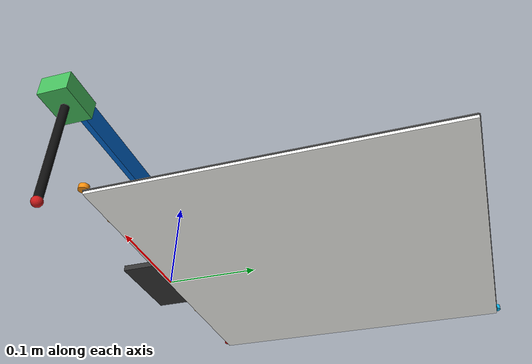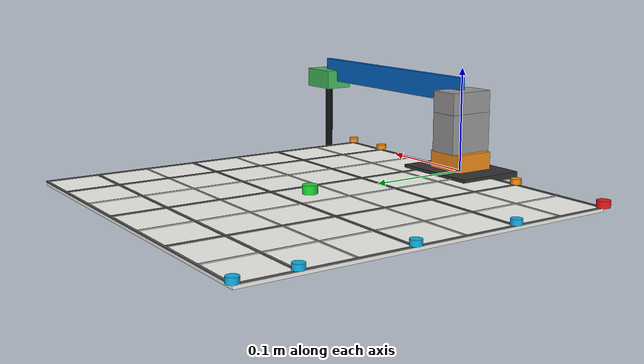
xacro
<?xml version="1.0"?>
<robot name="prarob_manipulator" xmlns:xacro="http://ros.org/wiki/xacro">
  <xacro:include filename="$(find robot_controllv2)/urdf/prarob_manipulator.xacro" />
  <xacro:include filename="$(find robot_controllv2)/urdf/prarob_manipulator.ros2_control.xacro" />

  <link name="world"/>

  <xacro:prarob_manipulator parent="world">
    <origin xyz="0 0 0" rpy="0 0 0" />
  </xacro:prarob_manipulator>

  <xacro:prarob_manipulator_ros2_control name="prarob_manipulator_ros2_control" />

  <xacro:include filename="$(find robot_controllv2)/urdf/drawing_board.xacro"/>

  <xacro:drawing_board parent="world"/>

</robot>

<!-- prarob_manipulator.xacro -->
<robot xmlns:xacro="http://ros.org/wiki/xacro">

<xacro:macro name="prarob_manipulator" params="parent *origin">
  <joint name="origin_to_link1" type="fixed">
    <xacro:insert_block name="origin" />
    <parent link="${parent}" />
    <child link="link1" />
    <origin xyz="0.0 0.0 0.0" rpy="0 0 0"/>
    <axis xyz="0 0 1" />
  </joint>

  <!-- link1: base plate + riser + servo body (fixed, before joint1 base yaw) -->
  <!-- origin = centre of base plate (z=0 is the plate mid-plane) -->
  <link name="link1">
    <inertial>
      <origin xyz="0 0 0.027" rpy="0 0 0"/>
      <mass value="0.18"/>
      <inertia ixx="1.30e-04" iyy="1.30e-04" izz="8.10e-05" ixy="0" iyz="0" ixz="0"/>
    </inertial>
    <!-- base plate -->
    <visual>
      <origin xyz="0 0 0" rpy="0 0 0"/>
      <geometry><box size="0.086 0.068 0.006"/></geometry>
      <material name="base_dark_grey"><color rgba="0.20 0.20 0.20 1.0"/></material>
    </visual>
    <collision>
      <origin xyz="0 0 0" rpy="0 0 0"/>
      <geometry><box size="0.086 0.068 0.006"/></geometry>
    </collision>
    <!-- riser -->
    <visual>
      <origin xyz="0 0 0.0115" rpy="0 0 0"/>
      <geometry><box size="0.040 0.040 0.017"/></geometry>
      <material name="base_orange"><color rgba="0.95 0.55 0.10 1.0"/></material>
    </visual>
    <collision>
      <origin xyz="0 0 0.0115" rpy="0 0 0"/>
      <geometry><box size="0.040 0.040 0.017"/></geometry>
    </collision>
    <!-- servo1 body (fixed part of yaw motor) -->
    <visual>
      <origin xyz="0 0 0.039" rpy="0 0 0"/>
      <geometry><box size="0.0285 0.046 0.0379"/></geometry>
      <material name="base_light_grey"><color rgba="0.60 0.60 0.60 1.0"/></material>
    </visual>
    <collision>
      <origin xyz="0 0 0.039" rpy="0 0 0"/>
      <geometry><box size="0.0285 0.046 0.0379"/></geometry>
    </collision>
  </link>

  <!-- joint1: base yaw (bottom), rotates around Z -->
  <joint name="joint1" type="revolute">
    <parent link="link1"/>
    <child link="link2"/>
    <origin xyz="0 0 0.0579" rpy="0 0 0"/>
    <axis xyz="0 0 1"/>
    <limit lower="-1.5707963267948966" upper="1.5707963267948966" effort="1.5" velocity="5.236"/>
    <dynamics damping="0.01" friction="0.05"/>
  </joint>

  <!-- link2: shoulder servo top (rotates with joint1) -->
  <link name="link2">
    <inertial>
      <origin xyz="0 0 0.0105" rpy="0 0 0"/>
      <mass value="0.05"/>
      <inertia ixx="1.0e-05" iyy="1.0e-05" izz="1.0e-05" ixy="0" iyz="0" ixz="0"/>
    </inertial>
    <visual>
      <origin xyz="0 0 0.0105" rpy="0 0 0"/>
      <geometry><box size="0.0285 0.046 0.021"/></geometry>
      <material name="shoulder_light_grey"><color rgba="0.60 0.60 0.60 1.0"/></material>
    </visual>
    <collision>
      <origin xyz="0 0 0.0105" rpy="0 0 0"/>
      <geometry><box size="0.0285 0.046 0.021"/></geometry>
    </collision>
  </link>

  <!-- joint2: arm pitch (second), rotates around -Y so +90° lifts arm to +Z -->
  <joint name="joint2" type="revolute">
    <parent link="link2"/>
    <child link="link3"/>
    <origin xyz="0 0 0.0209" rpy="0 0 0"/>
    <axis xyz="0 -1 0"/>
    <limit lower="-1.5707963267948966" upper="1.5707963267948966" effort="1.5" velocity="5.236"/>
    <dynamics damping="0.01" friction="0.05"/>
  </joint>

  <!-- link3: arm (224 mm), extends along +X in default position -->
  <link name="link3">
    <inertial>
      <origin xyz="0.112 0 0" rpy="0 0 0"/>
      <mass value="0.0776"/>
      <inertia ixx="5.04e-06" iyy="4.66e-04" izz="4.71e-04" ixy="0" iyz="0" ixz="0"/>
    </inertial>
    <visual>
      <origin xyz="0.112 0 0" rpy="0 0 0"/>
      <geometry><box size="0.224 0.006 0.024"/></geometry>
      <material name="arm_blue"><color rgba="0.00 0.40 0.80 1.0"/></material>
    </visual>
    <collision>
      <origin xyz="0.112 0 0" rpy="0 0 0"/>
      <geometry><box size="0.224 0.006 0.024"/></geometry>
    </collision>
  </link>

  <!-- joint3: wrist, rotates around Y -->
  <joint name="joint3" type="revolute">
    <parent link="link3"/>
    <child link="link_tool"/>
    <origin xyz="0.224 0 0" rpy="0 3.14159265358979 0"/>
    <axis xyz="0 1 0"/>
    <limit lower="-1.5707963267948966" upper="1.5707963267948966" effort="1.5" velocity="3.142"/>
    <dynamics damping="0.01" friction="0.05"/>
  </joint>

  <!-- link_tool: wrist bracket -->
  <link name="link_tool">
    <inertial>
      <origin xyz="0 0 0.01" rpy="0 0 0"/>
      <mass value="0.0335"/>
      <inertia ixx="3.25e-06" iyy="8.34e-06" izz="9.92e-06" ixy="0" iyz="0" ixz="0"/>
    </inertial>
    <visual>
      <origin xyz="0 0 0.01" rpy="0 0 0"/>
      <geometry><box size="0.040 0.030 0.020"/></geometry>
      <material name="wrist_green"><color rgba="0.27 0.74 0.36 1.0"/></material>
    </visual>
    <collision>
      <origin xyz="0 0 0.01" rpy="0 0 0"/>
      <geometry><box size="0.040 0.030 0.020"/></geometry>
    </collision>
  </link>

  <!-- pen/marker attached to wrist -->
  <joint name="joint_marker" type="fixed">
    <parent link="link_tool"/>
    <child link="marker_link"/>
    <origin xyz="0 0 0.020" rpy="0 0 0"/>
  </joint>

  <link name="marker_link">
    <inertial>
      <origin xyz="0 0 0.0525" rpy="0 0 0"/>
      <mass value="0.005"/>
      <inertia ixx="1e-06" iyy="1e-06" izz="1e-07" ixy="0" iyz="0" ixz="0"/>
    </inertial>
    <visual>
      <origin xyz="0 0 0.0525" rpy="0 0 0"/>
      <geometry><cylinder radius="0.004" length="0.105"/></geometry>
      <material name="marker_black"><color rgba="0.05 0.05 0.05 1.0"/></material>
    </visual>
    <collision>
      <origin xyz="0 0 0.0525" rpy="0 0 0"/>
      <geometry><cylinder radius="0.004" length="0.105"/></geometry>
    </collision>
  </link>

  <joint name="joint_tool" type="fixed">
    <parent link="marker_link"/>
    <child link="end_effector"/>
    <origin xyz="0 0 0.105" rpy="0 0 0"/>
  </joint>

  <link name="end_effector">
    <inertial>
      <origin xyz="0 0 0" rpy="0 0 0"/>
      <mass value="0.001"/>
      <inertia ixx="0" iyy="0" izz="0" ixy="0" iyz="0" ixz="0"/>
    </inertial>
    <visual>
      <origin xyz="0 0 0" rpy="0 0 0"/>
      <geometry><sphere radius="0.005"/></geometry>
      <material name="ee_red"><color rgba="0.80 0.10 0.10 1.0"/></material>
    </visual>
  </link>

</xacro:macro>
</robot>

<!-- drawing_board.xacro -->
<robot xmlns:xacro="http://ros.org/wiki/xacro">

<xacro:macro name="drawing_board" params="parent">

  <joint name="world_to_drawing_board" type="fixed">
    <parent link="${parent}"/>
    <child link="drawing_board"/>
    <origin xyz="0 0 0" rpy="0 0 0"/>
  </joint>

  <link name="drawing_board">

    <!-- ── board surface (350×350 mm, 3 mm thick) ──────────────────── -->
    <visual>
      <origin xyz="0 0.175 -0.0015" rpy="0 0 0"/>
      <geometry><box size="0.350 0.350 0.003"/></geometry>
      <material name="board_white"><color rgba="0.97 0.97 0.95 1.0"/></material>
    </visual>
    <collision>
      <origin xyz="0 0.175 -0.0015" rpy="0 0 0"/>
      <geometry><box size="0.350 0.350 0.003"/></geometry>
    </collision>

    <!-- ── minor grid lines — 50 mm, light grey ─────────────────────── -->

    <!-- parallel to Y  (board x = 50, 150, 250 mm → world x = -0.125, -0.025, 0.075) -->
    <visual><origin xyz="-0.125 0.175 0.0005" rpy="0 0 0"/><geometry><box size="0.001 0.350 0.001"/></geometry><material name="grid_minor"><color rgba="0.75 0.75 0.75 1.0"/></material></visual>
    <visual><origin xyz="-0.025 0.175 0.0005" rpy="0 0 0"/><geometry><box size="0.001 0.350 0.001"/></geometry><material name="grid_minor"><color rgba="0.75 0.75 0.75 1.0"/></material></visual>
    <visual><origin xyz=" 0.075 0.175 0.0005" rpy="0 0 0"/><geometry><box size="0.001 0.350 0.001"/></geometry><material name="grid_minor"><color rgba="0.75 0.75 0.75 1.0"/></material></visual>

    <!-- parallel to X  (board y = 50, 150, 250 mm → world y = 0.050, 0.150, 0.250) -->
    <visual><origin xyz="0 0.050 0.0005" rpy="0 0 0"/><geometry><box size="0.350 0.001 0.001"/></geometry><material name="grid_minor"><color rgba="0.75 0.75 0.75 1.0"/></material></visual>
    <visual><origin xyz="0 0.150 0.0005" rpy="0 0 0"/><geometry><box size="0.350 0.001 0.001"/></geometry><material name="grid_minor"><color rgba="0.75 0.75 0.75 1.0"/></material></visual>
    <visual><origin xyz="0 0.250 0.0005" rpy="0 0 0"/><geometry><box size="0.350 0.001 0.001"/></geometry><material name="grid_minor"><color rgba="0.75 0.75 0.75 1.0"/></material></visual>

    <!-- ── major grid lines — 100 mm, dark grey ─────────────────────── -->

    <!-- parallel to Y  (board x = 0, 100, 200, 300, 350 mm → world x = -0.175, -0.075, 0.025, 0.125, 0.175) -->
    <visual><origin xyz="-0.175 0.175 0.0007" rpy="0 0 0"/><geometry><box size="0.002 0.350 0.001"/></geometry><material name="grid_major"><color rgba="0.40 0.40 0.40 1.0"/></material></visual>
    <visual><origin xyz="-0.075 0.175 0.0007" rpy="0 0 0"/><geometry><box size="0.002 0.350 0.001"/></geometry><material name="grid_major"><color rgba="0.40 0.40 0.40 1.0"/></material></visual>
    <visual><origin xyz=" 0.025 0.175 0.0007" rpy="0 0 0"/><geometry><box size="0.002 0.350 0.001"/></geometry><material name="grid_major"><color rgba="0.40 0.40 0.40 1.0"/></material></visual>
    <visual><origin xyz=" 0.125 0.175 0.0007" rpy="0 0 0"/><geometry><box size="0.002 0.350 0.001"/></geometry><material name="grid_major"><color rgba="0.40 0.40 0.40 1.0"/></material></visual>
    <visual><origin xyz=" 0.175 0.175 0.0007" rpy="0 0 0"/><geometry><box size="0.002 0.350 0.001"/></geometry><material name="grid_major"><color rgba="0.40 0.40 0.40 1.0"/></material></visual>

    <!-- parallel to X  (board y = 0, 100, 200, 300, 350 mm → world y = 0.000, 0.100, 0.200, 0.300, 0.350) -->
    <visual><origin xyz="0 0.000 0.0007" rpy="0 0 0"/><geometry><box size="0.350 0.002 0.001"/></geometry><material name="grid_major"><color rgba="0.40 0.40 0.40 1.0"/></material></visual>
    <visual><origin xyz="0 0.100 0.0007" rpy="0 0 0"/><geometry><box size="0.350 0.002 0.001"/></geometry><material name="grid_major"><color rgba="0.40 0.40 0.40 1.0"/></material></visual>
    <visual><origin xyz="0 0.200 0.0007" rpy="0 0 0"/><geometry><box size="0.350 0.002 0.001"/></geometry><material name="grid_major"><color rgba="0.40 0.40 0.40 1.0"/></material></visual>
    <visual><origin xyz="0 0.300 0.0007" rpy="0 0 0"/><geometry><box size="0.350 0.002 0.001"/></geometry><material name="grid_major"><color rgba="0.40 0.40 0.40 1.0"/></material></visual>
    <visual><origin xyz="0 0.350 0.0007" rpy="0 0 0"/><geometry><box size="0.350 0.002 0.001"/></geometry><material name="grid_major"><color rgba="0.40 0.40 0.40 1.0"/></material></visual>

    <!-- ── coordinate markers (r=5 mm cylinders, h=5 mm) ────────────── -->

    <!-- RED — board origin (0, 0) mm = world (-0.175, 0.000) -->
    <visual><origin xyz="-0.175 0.000 0.004" rpy="0 0 0"/><geometry><cylinder radius="0.006" length="0.006"/></geometry><material name="board_marker_red"><color rgba="0.90 0.10 0.10 1.0"/></material></visual>

    <!-- ORANGE — x-axis steps: board (100,0) (200,0) (300,0) (350,0) mm -->
    <visual><origin xyz="-0.075 0.000 0.004" rpy="0 0 0"/><geometry><cylinder radius="0.005" length="0.005"/></geometry><material name="board_marker_orange"><color rgba="0.95 0.55 0.05 1.0"/></material></visual>
    <visual><origin xyz=" 0.025 0.000 0.004" rpy="0 0 0"/><geometry><cylinder radius="0.005" length="0.005"/></geometry><material name="board_marker_orange"><color rgba="0.95 0.55 0.05 1.0"/></material></visual>
    <visual><origin xyz=" 0.125 0.000 0.004" rpy="0 0 0"/><geometry><cylinder radius="0.005" length="0.005"/></geometry><material name="board_marker_orange"><color rgba="0.95 0.55 0.05 1.0"/></material></visual>
    <visual><origin xyz=" 0.175 0.000 0.004" rpy="0 0 0"/><geometry><cylinder radius="0.005" length="0.005"/></geometry><material name="board_marker_orange"><color rgba="0.95 0.55 0.05 1.0"/></material></visual>

    <!-- CYAN — y-axis steps: board (0,100) (0,200) (0,300) (0,350) mm -->
    <visual><origin xyz="-0.175 0.100 0.004" rpy="0 0 0"/><geometry><cylinder radius="0.005" length="0.005"/></geometry><material name="board_marker_cyan"><color rgba="0.05 0.70 0.90 1.0"/></material></visual>
    <visual><origin xyz="-0.175 0.200 0.004" rpy="0 0 0"/><geometry><cylinder radius="0.005" length="0.005"/></geometry><material name="board_marker_cyan"><color rgba="0.05 0.70 0.90 1.0"/></material></visual>
    <visual><origin xyz="-0.175 0.300 0.004" rpy="0 0 0"/><geometry><cylinder radius="0.005" length="0.005"/></geometry><material name="board_marker_cyan"><color rgba="0.05 0.70 0.90 1.0"/></material></visual>
    <visual><origin xyz="-0.175 0.350 0.004" rpy="0 0 0"/><geometry><cylinder radius="0.005" length="0.005"/></geometry><material name="board_marker_cyan"><color rgba="0.05 0.70 0.90 1.0"/></material></visual>

    <!-- GREEN — board centre (175, 175) mm = world (0.000, 0.175) -->
    <visual><origin xyz="0.000 0.175 0.005" rpy="0 0 0"/><geometry><cylinder radius="0.007" length="0.008"/></geometry><material name="board_marker_green"><color rgba="0.10 0.85 0.20 1.0"/></material></visual>

    <inertial>
      <origin xyz="0 0.175 -0.0015" rpy="0 0 0"/>
      <mass value="0.5"/>
      <inertia ixx="0.005" iyy="0.005" izz="0.010" ixy="0" iyz="0" ixz="0"/>
    </inertial>

  </link>

</xacro:macro>
</robot>
